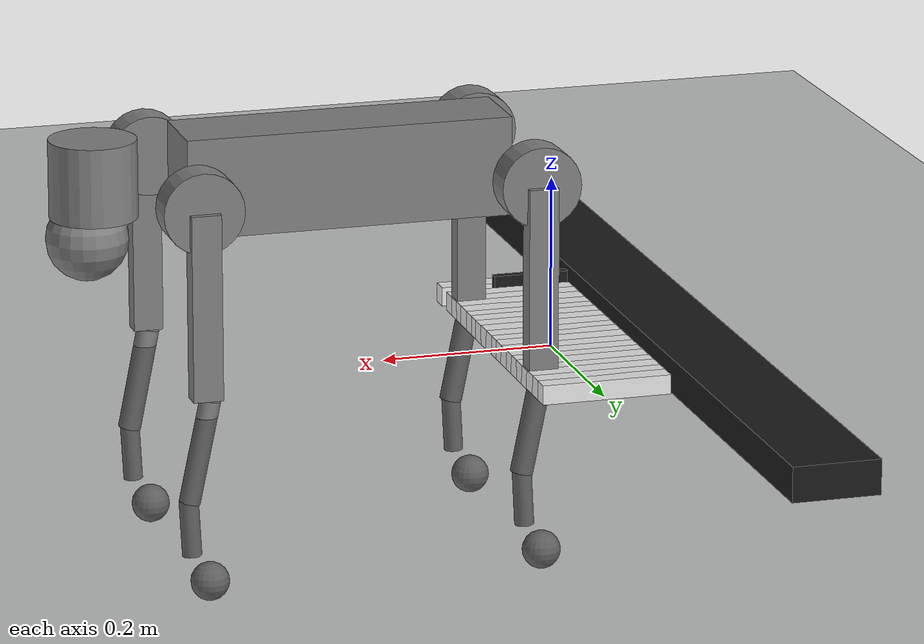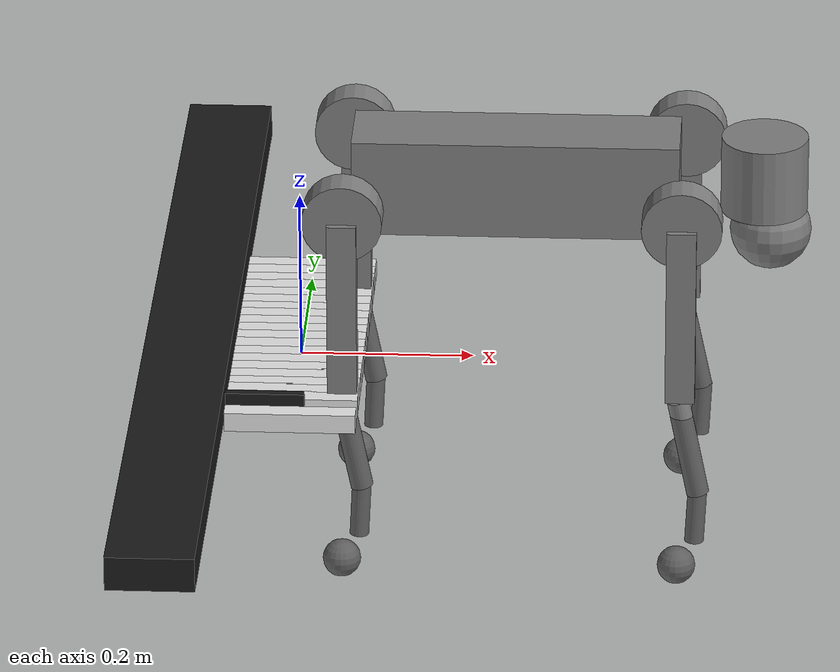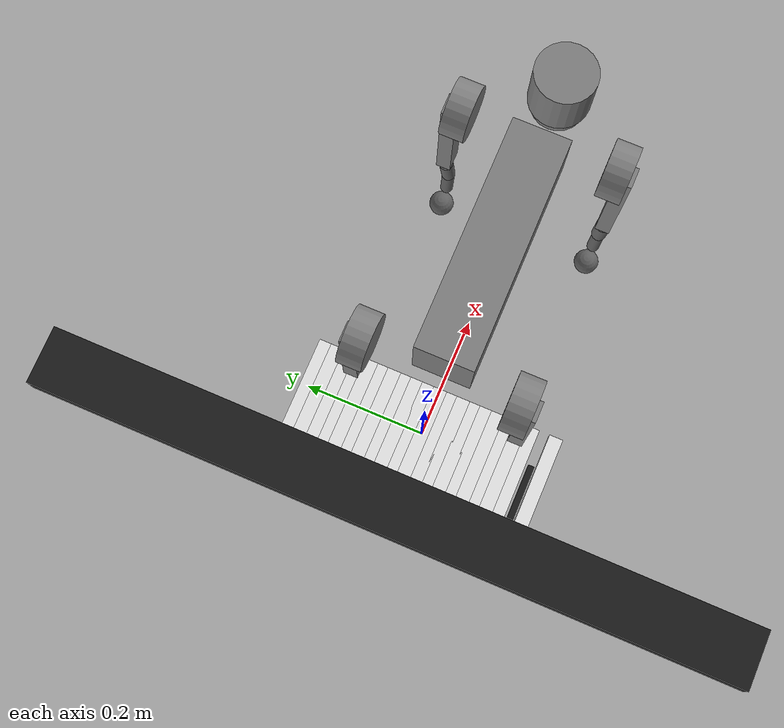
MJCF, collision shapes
<mujoco model="piano_with_go2_stage">
  <compiler autolimits="true" angle="radian"/>
  <option timestep="0.0050000000000000001" impratio="10"/>
  <visual>
    <global azimuth="180" elevation="-50"/>
    <map stiffness="400"/>
    <scale forcewidth="0.040000000000000001" contactwidth="0.20000000000000001" contactheight="0.029999999999999999"/>
  </visual>
  <statistic extent="0.8" center="0.2 0 0.3"/>
  <default>
    <default class="/"/>
    <default class="piano/">
      <joint type="hinge" axis="0 1 0"/>
      <geom type="box" contype="0" conaffinity="1" solref="0.01 1"/>
      <site type="box" group="4" rgba="1 0 0 1"/>
      <default class="piano/white_key">
        <joint pos="-0.074999999999999997 0 0" stiffness="2" range="0 0.066568163775823808" springref="-0.017453292519943295" armature="0.001" damping="0.050000000000000003"/>
        <geom size="0.074999999999999997 0.01125 0.01125" material="piano/white" mass="0.040000000000000001"/>
        <site size="0.074999999999999997 0.01125 0.01125"/>
      </default>
      <default class="piano/black_key">
        <joint pos="-0.044999999999999998 0 0" stiffness="2" range="0 0.088655881867437475" springref="-0.017453292519943295" armature="0.001" damping="0.050000000000000003"/>
        <geom size="0.044999999999999998 0.0050000000000000001 0.0089999999999999993" material="piano/black" mass="0.02"/>
        <site size="0.044999999999999998 0.0050000000000000001 0.0089999999999999993"/>
      </default>
    </default>

    <!-- Go2 Robot defaults -->
    <default class="go2">
      <geom friction="0.6" margin="0.001" condim="1"/>
      <joint axis="0 1 0" damping="2" armature="0.01" frictionloss="0.2"/>
      <motor ctrlrange="-23.7 23.7"/>
      <default class="abduction">
        <joint axis="1 0 0" range="-1.0472 1.0472"/>
      </default>
      <default class="hip">
        <default class="front_hip">
          <joint range="-1.5708 3.4907"/>
        </default>
        <default class="back_hip">
          <joint range="-0.5236 4.5379"/>
        </default>
      </default>
      <default class="knee">
        <joint range="-2.7227 -0.83776"/>
        <motor ctrlrange="-45.43 45.43"/>
      </default>
      <default class="visual">
        <geom type="mesh" contype="0" conaffinity="0" group="2"/>
      </default>
      <default class="collision">
        <geom group="3"/>
        <default class="foot">
          <geom size="0.022" pos="-0.002 0 -0.213" priority="1" solimp="0.015 1 0.022" condim="6"
            friction="0.8 0.02 0.01"/>
        </default>
      </default>
    </default>
  </default>
  <asset>
    <texture name="skybox" type="skybox" builtin="gradient" rgb1="0.20000000000000001 0.20000000000000001 0.20000000000000001" rgb2="0 0 0" mark="random" markrgb="1 1 1" width="800" height="800"/>
    <material name="piano/white" class="piano/" rgba="0.90000000000000002 0.90000000000000002 0.90000000000000002 1"/>
    <material name="piano/black" class="piano/" rgba="0.10000000000000001 0.10000000000000001 0.10000000000000001 1" shininess="1" reflectance="0.2"/>
    <material name="piano/base" class="piano/" rgba="0.1 0.1 0.1 1" shininess="1"/>

    <!-- Go2 materials -->
    <material name="go2_metal" rgba=".9 .95 .95 1"/>
    <material name="go2_black" rgba="0 0 0 1"/>
    <material name="go2_white" rgba="1 1 1 1"/>
    <material name="go2_gray" rgba="0.671705 0.692426 0.774270 1"/>

    <!-- Go2 meshes -->
    <mesh file="assets/base_0.obj"/>
    <mesh file="assets/base_1.obj"/>
    <mesh file="assets/base_2.obj"/>
    <mesh file="assets/base_3.obj"/>
    <mesh file="assets/base_4.obj"/>
    <mesh file="assets/hip_0.obj"/>
    <mesh file="assets/hip_1.obj"/>
    <mesh file="assets/thigh_0.obj"/>
    <mesh file="assets/thigh_1.obj"/>
    <mesh file="assets/thigh_mirror_0.obj"/>
    <mesh file="assets/thigh_mirror_1.obj"/>
    <mesh file="assets/calf_0.obj"/>
    <mesh file="assets/calf_1.obj"/>
    <mesh file="assets/calf_mirror_0.obj"/>
    <mesh file="assets/calf_mirror_1.obj"/>
    <mesh file="assets/foot.obj"/>

    <texture name="grid" type="2d" builtin="checker" width="512" height="512" rgb1=".1 .1 .1" rgb2=".2 .2 .2"/>
    <material name="grid" texture="grid" texrepeat="1 1" texuniform="true" reflectance=".2"/>
  </asset>
  <worldbody>
    <light name="//unnamed_light_0" class="/" pos="0 0 1"/>
    <light name="//unnamed_light_1" class="/" directional="false" pos="0.29999999999999999 0 1" dir="0 0 -1"/>
    <geom name="floor" size="0 0 .05" type="plane" material="grid" class="/" contype="0" conaffinity="0"/>

    <!-- Piano -->
    <body name="piano/">
      <body name="piano/base" pos="-0.127 0 0.02">
        <geom name="piano//unnamed_geom_0" class="piano/" type="box" size="0.050000000000000003 0.61049999999999993 0.02" material="piano/base"/>
      </body>

      <!-- Piano keys - keeping a subset for demonstration -->
      <body name="piano/white_key_0" pos="0 -0.2 0.01125">
        <geom name="piano/white_key_geom_0" class="piano/white_key"/>
        <joint name="piano/white_joint_0" class="piano/white_key"/>
        <site name="piano/white_key_site_0" class="piano/white_key"/>
      </body>
      <body name="piano/black_key_1" pos="-0.029999999999999999 -0.18 0.026000000000000002">
        <geom name="piano/black_key_geom_1" class="piano/black_key"/>
        <joint name="piano/black_joint_1" class="piano/black_key"/>
        <site name="piano/black_key_site_1" class="piano/black_key"/>
      </body>
      <body name="piano/white_key_2" pos="0 -0.16 0.01125">
        <geom name="piano/white_key_geom_2" class="piano/white_key"/>
        <joint name="piano/white_joint_2" class="piano/white_key"/>
        <site name="piano/white_key_site_2" class="piano/white_key"/>
      </body>
      <body name="piano/white_key_3" pos="0 -0.14 0.01125">
        <geom name="piano/white_key_geom_3" class="piano/white_key"/>
        <joint name="piano/white_joint_3" class="piano/white_key"/>
        <site name="piano/white_key_site_3" class="piano/white_key"/>
      </body>
      <body name="piano/white_key_4" pos="0 -0.12 0.01125">
        <geom name="piano/white_key_geom_4" class="piano/white_key"/>
        <joint name="piano/white_joint_4" class="piano/white_key"/>
        <site name="piano/white_key_site_4" class="piano/white_key"/>
      </body>
      <body name="piano/white_key_5" pos="0 -0.10 0.01125">
        <geom name="piano/white_key_geom_5" class="piano/white_key"/>
        <joint name="piano/white_joint_5" class="piano/white_key"/>
        <site name="piano/white_key_site_5" class="piano/white_key"/>
      </body>
      <body name="piano/white_key_6" pos="0 -0.08 0.01125">
        <geom name="piano/white_key_geom_6" class="piano/white_key"/>
        <joint name="piano/white_joint_6" class="piano/white_key"/>
        <site name="piano/white_key_site_6" class="piano/white_key"/>
      </body>
      <body name="piano/white_key_7" pos="0 -0.06 0.01125">
        <geom name="piano/white_key_geom_7" class="piano/white_key"/>
        <joint name="piano/white_joint_7" class="piano/white_key"/>
        <site name="piano/white_key_site_7" class="piano/white_key"/>
      </body>
      <body name="piano/white_key_8" pos="0 -0.04 0.01125">
        <geom name="piano/white_key_geom_8" class="piano/white_key"/>
        <joint name="piano/white_joint_8" class="piano/white_key"/>
        <site name="piano/white_key_site_8" class="piano/white_key"/>
      </body>
      <body name="piano/white_key_9" pos="0 -0.02 0.01125">
        <geom name="piano/white_key_geom_9" class="piano/white_key"/>
        <joint name="piano/white_joint_9" class="piano/white_key"/>
        <site name="piano/white_key_site_9" class="piano/white_key"/>
      </body>
      <body name="piano/white_key_10" pos="0 0.0 0.01125">
        <geom name="piano/white_key_geom_10" class="piano/white_key"/>
        <joint name="piano/white_joint_10" class="piano/white_key"/>
        <site name="piano/white_key_site_10" class="piano/white_key"/>
      </body>
      <body name="piano/white_key_11" pos="0 0.02 0.01125">
        <geom name="piano/white_key_geom_11" class="piano/white_key"/>
        <joint name="piano/white_joint_11" class="piano/white_key"/>
        <site name="piano/white_key_site_11" class="piano/white_key"/>
      </body>
      <body name="piano/white_key_12" pos="0 0.04 0.01125">
        <geom name="piano/white_key_geom_12" class="piano/white_key"/>
        <joint name="piano/white_joint_12" class="piano/white_key"/>
        <site name="piano/white_key_site_12" class="piano/white_key"/>
      </body>
      <body name="piano/white_key_13" pos="0 0.06 0.01125">
        <geom name="piano/white_key_geom_13" class="piano/white_key"/>
        <joint name="piano/white_joint_13" class="piano/white_key"/>
        <site name="piano/white_key_site_13" class="piano/white_key"/>
      </body>
      <body name="piano/white_key_14" pos="0 0.08 0.01125">
        <geom name="piano/white_key_geom_14" class="piano/white_key"/>
        <joint name="piano/white_joint_14" class="piano/white_key"/>
        <site name="piano/white_key_site_14" class="piano/white_key"/>
      </body>
      <body name="piano/white_key_15" pos="0 0.10 0.01125">
        <geom name="piano/white_key_geom_15" class="piano/white_key"/>
        <joint name="piano/white_joint_15" class="piano/white_key"/>
        <site name="piano/white_key_site_15" class="piano/white_key"/>
      </body>
      <body name="piano/white_key_16" pos="0 0.12 0.01125">
        <geom name="piano/white_key_geom_16" class="piano/white_key"/>
        <joint name="piano/white_joint_16" class="piano/white_key"/>
        <site name="piano/white_key_site_16" class="piano/white_key"/>
      </body>
      <body name="piano/white_key_17" pos="0 0.14 0.01125">
        <geom name="piano/white_key_geom_17" class="piano/white_key"/>
        <joint name="piano/white_joint_17" class="piano/white_key"/>
        <site name="piano/white_key_site_17" class="piano/white_key"/>
      </body>
      <body name="piano/white_key_18" pos="0 0.16 0.01125">
        <geom name="piano/white_key_geom_18" class="piano/white_key"/>
        <joint name="piano/white_joint_18" class="piano/white_key"/>
        <site name="piano/white_key_site_18" class="piano/white_key"/>
      </body>
      <body name="piano/white_key_19" pos="0 0.18 0.01125">
        <geom name="piano/white_key_geom_19" class="piano/white_key"/>
        <joint name="piano/white_joint_19" class="piano/white_key"/>
        <site name="piano/white_key_site_19" class="piano/white_key"/>
      </body>
      <body name="piano/white_key_20" pos="0 0.20 0.01125">
        <geom name="piano/white_key_geom_20" class="piano/white_key"/>
        <joint name="piano/white_joint_20" class="piano/white_key"/>
        <site name="piano/white_key_site_20" class="piano/white_key"/>
      </body>

      <!-- Piano cameras -->
      <camera name="piano/closeup" class="piano/" pos="-0.313 0.024 0.45500000000000002" xyaxes="0.0030000000000000001 -1 -0 0.60699999999999998 0.002 0.79500000000000004"/>
      <camera name="piano/left" class="piano/" pos="0.39300000000000002 -0.79100000000000004 0.63800000000000001" xyaxes="0.80800000000000005 0.58899999999999997 0 -0.38800000000000001 0.53300000000000003 0.752"/>
      <camera name="piano/right" class="piano/" pos="0.47199999999999998 0.59799999999999998 0.57999999999999996" xyaxes="-0.63700000000000001 0.77100000000000002 -0 -0.51000000000000001 -0.42099999999999999 0.75"/>
      <camera name="piano/back" class="piano/" pos="-0.56899999999999995 0.0080000000000000002 0.84099999999999997" xyaxes="-0.0089999999999999993 -1 0 0.78300000000000003 -0.0070000000000000001 0.622"/>
      <camera name="piano/egocentric" class="piano/" pos="0.41699999999999998 -0.039 0.71699999999999997" xyaxes="-0.002 1 0 -0.86699999999999999 -0.002 0.498"/>
      <camera name="piano/topdown" class="piano/" fovy="33.9496196739872" pos="0 0 1" quat="1 0 0 1"/>
    </body>

    <!-- Unitree Go2 Robot positioned to play piano -->
    <body name="go2_base" pos="0.25 0 0.232" quat="1 0 0 0" childclass="go2">
      <inertial pos="0.021112 0 -0.005366" quat="-0.000543471 0.713435 -0.00173769 0.700719" mass="6.921"
        diaginertia="0.107027 0.0980771 0.0244531"/>
      <geom mesh="base_0" material="go2_black" class="visual"/>
      <geom mesh="base_1" material="go2_black" class="visual"/>
      <geom mesh="base_2" material="go2_black" class="visual"/>
      <geom mesh="base_3" material="go2_white" class="visual"/>
      <geom mesh="base_4" material="go2_gray" class="visual"/>
      <geom size="0.1881 0.04675 0.057" type="box" class="collision"/>
      <geom size="0.05 0.045" pos="0.285 0 0.01" type="cylinder" class="collision"/>
      <geom size="0.047" pos="0.293 0 -0.06" class="collision"/>
      <site name="go2_imu" pos="-0.02557 0 0.04232"/>

      <!-- Front Left Leg -->
      <body name="go2_FL_hip" pos="0.1934 0.0465 0">
        <inertial pos="-0.0054 0.00194 -0.000105" quat="0.497014 0.499245 0.505462 0.498237" mass="0.678"
          diaginertia="0.00088403 0.000596003 0.000479967"/>
        <joint name="go2_FL_hip_joint" class="abduction"/>
        <geom mesh="hip_0" material="go2_metal" class="visual"/>
        <geom mesh="hip_1" material="go2_gray" class="visual"/>
        <geom size="0.046 0.02" pos="0 0.08 0" quat="1 1 0 0" type="cylinder" class="collision"/>
        <body name="go2_FL_thigh" pos="0 0.0955 0">
          <inertial pos="-0.00374 -0.0223 -0.0327" quat="0.829533 0.0847635 -0.0200632 0.551623" mass="1.152"
            diaginertia="0.00594973 0.00584149 0.000878787"/>
          <joint name="go2_FL_thigh_joint" class="front_hip"/>
          <geom mesh="thigh_0" material="go2_metal" class="visual"/>
          <geom mesh="thigh_1" material="go2_gray" class="visual"/>
          <geom size="0.1065 0.01225 0.017" pos="0 0 -0.1065" quat="0.707107 0 0.707107 0" type="box" class="collision"/>
          <body name="go2_FL_calf" pos="0 0 -0.213">
            <inertial pos="0.00629595 -0.000622121 -0.141417" quat="0.710672 0.00154099 -0.00450087 0.703508"
              mass="0.241352" diaginertia="0.0014901 0.00146356 5.31397e-05"/>
            <joint name="go2_FL_calf_joint" class="knee"/>
            <geom mesh="calf_0" material="go2_gray" class="visual"/>
            <geom mesh="calf_1" material="go2_black" class="visual"/>
            <geom size="0.012 0.06" pos="0.008 0 -0.06" quat="0.994493 0 -0.104807 0" type="cylinder" class="collision"/>
            <geom size="0.011 0.0325" pos="0.02 0 -0.148" quat="0.999688 0 0.0249974 0" type="cylinder" class="collision"/>
            <geom pos="0 0 -0.213" mesh="foot" class="visual" material="go2_black"/>
            <geom name="go2_FL" class="foot" contype="1" conaffinity="1"/>
            <site name="go2_FL_paw" pos="0 0 -0.213" size="0.02" rgba="1 0 0 0.5"/>
          </body>
        </body>
      </body>

      <!-- Front Right Leg -->
      <body name="go2_FR_hip" pos="0.1934 -0.0465 0">
        <inertial pos="-0.0054 -0.00194 -0.000105" quat="0.498237 0.505462 0.499245 0.497014" mass="0.678"
          diaginertia="0.00088403 0.000596003 0.000479967"/>
        <joint name="go2_FR_hip_joint" class="abduction"/>
        <geom mesh="hip_0" material="go2_metal" class="visual" quat="4.63268e-05 1 0 0"/>
        <geom mesh="hip_1" material="go2_gray" class="visual" quat="4.63268e-05 1 0 0"/>
        <geom size="0.046 0.02" pos="0 -0.08 0" quat="0.707107 0.707107 0 0" type="cylinder" class="collision"/>
        <body name="go2_FR_thigh" pos="0 -0.0955 0">
          <inertial pos="-0.00374 0.0223 -0.0327" quat="0.551623 -0.0200632 0.0847635 0.829533" mass="1.152"
            diaginertia="0.00594973 0.00584149 0.000878787"/>
          <joint name="go2_FR_thigh_joint" class="front_hip"/>
          <geom mesh="thigh_mirror_0" material="go2_metal" class="visual"/>
          <geom mesh="thigh_mirror_1" material="go2_gray" class="visual"/>
          <geom size="0.1065 0.01225 0.017" pos="0 0 -0.1065" quat="0.707107 0 0.707107 0" type="box" class="collision"/>
          <body name="go2_FR_calf" pos="0 0 -0.213">
            <inertial pos="0.00629595 0.000622121 -0.141417" quat="0.703508 -0.00450087 0.00154099 0.710672"
              mass="0.241352" diaginertia="0.0014901 0.00146356 5.31397e-05"/>
            <joint name="go2_FR_calf_joint" class="knee"/>
            <geom mesh="calf_mirror_0" material="go2_gray" class="visual"/>
            <geom mesh="calf_mirror_1" material="go2_black" class="visual"/>
            <geom size="0.013 0.06" pos="0.01 0 -0.06" quat="0.995004 0 -0.0998334 0" type="cylinder" class="collision"/>
            <geom size="0.011 0.0325" pos="0.02 0 -0.148" quat="0.999688 0 0.0249974 0" type="cylinder" class="collision"/>
            <geom pos="0 0 -0.213" mesh="foot" class="visual" material="go2_black"/>
            <geom name="go2_FR" class="foot" contype="1" conaffinity="1"/>
            <site name="go2_FR_paw" pos="0 0 -0.213" size="0.02" rgba="1 0 0 0.5"/>
          </body>
        </body>
      </body>

      <!-- Rear Left Leg -->
      <body name="go2_RL_hip" pos="-0.1934 0.0465 0">
        <inertial pos="0.0054 0.00194 -0.000105" quat="0.505462 0.498237 0.497014 0.499245" mass="0.678"
          diaginertia="0.00088403 0.000596003 0.000479967"/>
        <joint name="go2_RL_hip_joint" class="abduction"/>
        <geom mesh="hip_0" material="go2_metal" class="visual" quat="4.63268e-05 0 1 0"/>
        <geom mesh="hip_1" material="go2_gray" class="visual" quat="4.63268e-05 0 1 0"/>
        <geom size="0.046 0.02" pos="0 0.08 0" quat="0.707107 0.707107 0 0" type="cylinder" class="collision"/>
        <body name="go2_RL_thigh" pos="0 0.0955 0">
          <inertial pos="-0.00374 -0.0223 -0.0327" quat="0.829533 0.0847635 -0.0200632 0.551623" mass="1.152"
            diaginertia="0.00594973 0.00584149 0.000878787"/>
          <joint name="go2_RL_thigh_joint" class="back_hip"/>
          <geom mesh="thigh_0" material="go2_metal" class="visual"/>
          <geom mesh="thigh_1" material="go2_gray" class="visual"/>
          <geom size="0.1065 0.01225 0.017" pos="0 0 -0.1065" quat="0.707107 0 0.707107 0" type="box" class="collision"/>
          <body name="go2_RL_calf" pos="0 0 -0.213">
            <inertial pos="0.00629595 -0.000622121 -0.141417" quat="0.710672 0.00154099 -0.00450087 0.703508"
              mass="0.241352" diaginertia="0.0014901 0.00146356 5.31397e-05"/>
            <joint name="go2_RL_calf_joint" class="knee"/>
            <geom mesh="calf_0" material="go2_gray" class="visual"/>
            <geom mesh="calf_1" material="go2_black" class="visual"/>
            <geom size="0.013 0.06" pos="0.01 0 -0.06" quat="0.995004 0 -0.0998334 0" type="cylinder" class="collision"/>
            <geom size="0.011 0.0325" pos="0.02 0 -0.148" quat="0.999688 0 0.0249974 0" type="cylinder" class="collision"/>
            <geom pos="0 0 -0.213" mesh="foot" class="visual" material="go2_black"/>
            <geom name="go2_RL" class="foot" contype="1" conaffinity="0"/>
            <site name="go2_RL_paw" pos="0 0 -0.213" size="0.02" rgba="0 1 0 0.5"/>
          </body>
        </body>
      </body>

      <!-- Rear Right Leg -->
      <body name="go2_RR_hip" pos="-0.1934 -0.0465 0">
        <inertial pos="0.0054 -0.00194 -0.000105" quat="0.499245 0.497014 0.498237 0.505462" mass="0.678"
          diaginertia="0.00088403 0.000596003 0.000479967"/>
        <joint name="go2_RR_hip_joint" class="abduction"/>
        <geom mesh="hip_0" material="go2_metal" class="visual" quat="2.14617e-09 4.63268e-05 4.63268e-05 -1"/>
        <geom mesh="hip_1" material="go2_gray" class="visual" quat="2.14617e-09 4.63268e-05 4.63268e-05 -1"/>
        <geom size="0.046 0.02" pos="0 -0.08 0" quat="0.707107 0.707107 0 0" type="cylinder" class="collision"/>
        <body name="go2_RR_thigh" pos="0 -0.0955 0">
          <inertial pos="-0.00374 0.0223 -0.0327" quat="0.551623 -0.0200632 0.0847635 0.829533" mass="1.152"
            diaginertia="0.00594973 0.00584149 0.000878787"/>
          <joint name="go2_RR_thigh_joint" class="back_hip"/>
          <geom mesh="thigh_mirror_0" material="go2_metal" class="visual"/>
          <geom mesh="thigh_mirror_1" material="go2_gray" class="visual"/>
          <geom size="0.1065 0.01225 0.017" pos="0 0 -0.1065" quat="0.707107 0 0.707107 0" type="box" class="collision"/>
          <body name="go2_RR_calf" pos="0 0 -0.213">
            <inertial pos="0.00629595 0.000622121 -0.141417" quat="0.703508 -0.00450087 0.00154099 0.710672"
              mass="0.241352" diaginertia="0.0014901 0.00146356 5.31397e-05"/>
            <joint name="go2_RR_calf_joint" class="knee"/>
            <geom mesh="calf_mirror_0" material="go2_gray" class="visual"/>
            <geom mesh="calf_mirror_1" material="go2_black" class="visual"/>
            <geom size="0.013 0.06" pos="0.01 0 -0.06" quat="0.995004 0 -0.0998334 0" type="cylinder" class="collision"/>
            <geom size="0.011 0.0325" pos="0.02 0 -0.148" quat="0.999688 0 0.0249974 0" type="cylinder" class="collision"/>
            <geom pos="0 0 -0.213" mesh="foot" class="visual" material="go2_black"/>
            <geom name="go2_RR" class="foot" contype="1" conaffinity="0"/>
            <site name="go2_RR_paw" pos="0 0 -0.213" size="0.02" rgba="0 1 0 0.5"/>
          </body>
        </body>
      </body>
    </body>
  </worldbody>

  <actuator>
    <!-- Go2 Robot Actuators -->
    <motor class="abduction" name="go2_FL_hip" joint="go2_FL_hip_joint"/>
    <motor class="hip" name="go2_FL_thigh" joint="go2_FL_thigh_joint"/>
    <motor class="knee" name="go2_FL_calf" joint="go2_FL_calf_joint"/>
    <motor class="abduction" name="go2_FR_hip" joint="go2_FR_hip_joint"/>
    <motor class="hip" name="go2_FR_thigh" joint="go2_FR_thigh_joint"/>
    <motor class="knee" name="go2_FR_calf" joint="go2_FR_calf_joint"/>
    <motor class="abduction" name="go2_RL_hip" joint="go2_RL_hip_joint"/>
    <motor class="hip" name="go2_RL_thigh" joint="go2_RL_thigh_joint"/>
    <motor class="knee" name="go2_RL_calf" joint="go2_RL_calf_joint"/>
    <motor class="abduction" name="go2_RR_hip" joint="go2_RR_hip_joint"/>
    <motor class="hip" name="go2_RR_thigh" joint="go2_RR_thigh_joint"/>
    <motor class="knee" name="go2_RR_calf" joint="go2_RR_calf_joint"/>
  </actuator>

  <keyframe>
    <key name="go2_piano_stance"
         qpos="0.3 0.8 -1.6 0.3 0.8 -1.6 -0.5 -0.5 1.0 -0.5 -0.5 1.0"/>
  </keyframe>
</mujoco>
